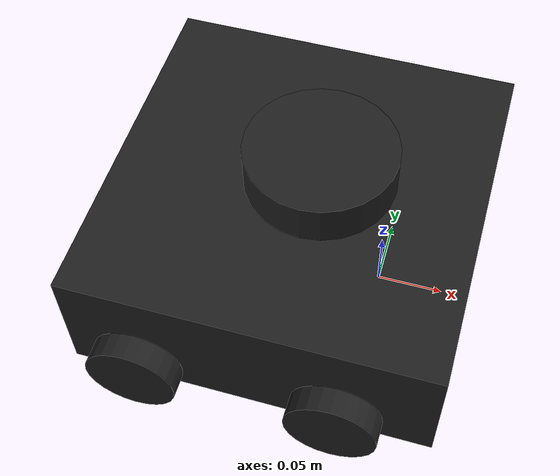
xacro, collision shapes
<?xml version="1.0" ?>
<robot name="turtlebot3_waffle" xmlns:xacro="http://ros.org/wiki/xacro">
  <xacro:include filename="$(find turtlebot3_description)/urdf/common_properties.xacro"/>
  <xacro:include filename="$(find turtlebot3_description)/urdf/turtlebot3_waffle.gazebo.xacro"/>

  <xacro:property name="r200_cam_rgb_px" value="0.005"/>
  <xacro:property name="r200_cam_rgb_py" value="0.018"/>
  <xacro:property name="r200_cam_rgb_pz" value="0.013"/>
  <xacro:property name="r200_cam_depth_offset" value="0.01"/>

  <link name="base_footprint"/>

  <joint name="base_joint" type="fixed">
    <parent link="base_footprint"/>
    <child link="base_link" />
    <origin xyz="0 0 0.010" rpy="0 0 0"/>
  </joint>

  <link name="base_link">
    <visual>
      <origin xyz="-0.064 0 0.0" rpy="0 0 0"/>
      <geometry>
        <mesh filename="package://turtlebot3_description/meshes/bases/waffle_base.stl" scale="0.001 0.001 0.001"/>
      </geometry>
      <material name="light_black"/>
    </visual>

    <collision>
      <origin xyz="-0.064 0 0.047" rpy="0 0 0"/>
      <geometry>
        <box size="0.266 0.266 0.094"/>
      </geometry>
    </collision>

    <inertial>
      <origin xyz="0 0 0" rpy="0 0 0"/>
      <mass value="1.3729096e+00"/>
      <inertia ixx="8.7002718e-03" ixy="-4.7576583e-05" ixz="1.1160499e-04"
               iyy="8.6195418e-03" iyz="-3.5422299e-06"
               izz="1.4612727e-02" />
    </inertial>
  </link>

  <joint name="wheel_left_joint" type="continuous">
    <parent link="base_link"/>
    <child link="wheel_left_link"/>
    <origin xyz="0.0 0.144 0.023" rpy="-1.57 0 0"/>
    <axis xyz="0 0 1"/>
  </joint>

  <link name="wheel_left_link">
    <visual>
      <origin xyz="0 0 0" rpy="1.57 0 0"/>
      <geometry>
        <mesh filename="package://turtlebot3_description/meshes/wheels/left_tire.stl" scale="0.001 0.001 0.001"/>
      </geometry>
      <material name="dark"/>
    </visual>

    <collision>
      <origin xyz="0 0 0" rpy="0 0 0"/>
      <geometry>
        <cylinder length="0.018" radius="0.033"/>
      </geometry>
    </collision>

    <inertial>
      <origin xyz="0 0 0" />
      <mass value="2.8498940e-02" />
      <inertia ixx="1.1175580e-05" ixy="-4.2369783e-11" ixz="-5.9381719e-09"
               iyy="1.1192413e-05" iyz="-1.4400107e-11"
               izz="2.0712558e-05" />
      </inertial>
  </link>

  <joint name="wheel_right_joint" type="continuous">
    <parent link="base_link"/>
    <child link="wheel_right_link"/>
    <origin xyz="0.0 -0.144 0.023" rpy="-1.57 0 0"/>
    <axis xyz="0 0 1"/>
  </joint>

  <link name="wheel_right_link">
    <visual>
      <origin xyz="0 0 0" rpy="1.57 0 0"/>
      <geometry>
        <mesh filename="package://turtlebot3_description/meshes/wheels/right_tire.stl" scale="0.001 0.001 0.001"/>
      </geometry>
      <material name="dark"/>
    </visual>

    <collision>
      <origin xyz="0 0 0" rpy="0 0 0"/>
      <geometry>
        <cylinder length="0.018" radius="0.033"/>
      </geometry>
    </collision>

    <inertial>
      <origin xyz="0 0 0" />
      <mass value="2.8498940e-02" />
      <inertia ixx="1.1175580e-05" ixy="-4.2369783e-11" ixz="-5.9381719e-09"
               iyy="1.1192413e-05" iyz="-1.4400107e-11"
               izz="2.0712558e-05" />
      </inertial>
  </link>

  <joint name="wheel_left_rear_joint" type="continuous">
    <parent link="base_link"/>
    <child link="wheel_left_rear_link"/>
    <origin xyz="-0.144 0.144 0.023" rpy="-1.57 0 0"/>
    <axis xyz="0 0 1"/>
  </joint>

  <link name="wheel_left_rear_link">
    <visual>
      <origin xyz="0 0 0" rpy="1.57 0 0"/>
      <geometry>
        <mesh filename="package://turtlebot3_description/meshes/wheels/left_tire.stl" scale="0.001 0.001 0.001"/>
      </geometry>
      <material name="dark"/>
    </visual>

    <collision>
      <origin xyz="0 0 0" rpy="0 0 0"/>
      <geometry>
        <cylinder length="0.018" radius="0.033"/>
      </geometry>
    </collision>

    <inertial>
      <origin xyz="0 0 0" />
      <mass value="2.8498940e-02" />
      <inertia ixx="1.1175580e-05" ixy="-4.2369783e-11" ixz="-5.9381719e-09"
               iyy="1.1192413e-05" iyz="-1.4400107e-11"
               izz="2.0712558e-05" />
      </inertial>
  </link>

  <joint name="wheel_right_rear_joint" type="continuous">
    <parent link="base_link"/>
    <child link="wheel_right_rear_link"/>
    <origin xyz="-0.144 -0.144 0.023" rpy="-1.57 0 0"/>
    <axis xyz="0 0 1"/>
  </joint>

  <link name="wheel_right_rear_link">
    <visual>
      <origin xyz="0 0 0" rpy="1.57 0 0"/>
      <geometry>
        <mesh filename="package://turtlebot3_description/meshes/wheels/right_tire.stl" scale="0.001 0.001 0.001"/>
      </geometry>
      <material name="dark"/>
    </visual>

    <collision>
      <origin xyz="0 0 0" rpy="0 0 0"/>
      <geometry>
        <cylinder length="0.018" radius="0.033"/>
      </geometry>
    </collision>

    <inertial>
      <origin xyz="0 0 0" />
      <mass value="2.8498940e-02" />
      <inertia ixx="1.1175580e-05" ixy="-4.2369783e-11" ixz="-5.9381719e-09"
               iyy="1.1192413e-05" iyz="-1.4400107e-11"
               izz="2.0712558e-05" />
      </inertial>
  </link>

  <joint name="imu_joint" type="fixed">
    <parent link="base_link"/>
    <child link="imu_link"/>
    <origin xyz="0.0 0 0.068" rpy="0 0 0"/>
  </joint>

  <link name="imu_link"/>

  <joint name="scan_joint" type="fixed">
    <parent link="base_link"/>
    <child link="base_scan"/>
    <origin xyz="-0.064 0 0.122" rpy="0 0 0"/>
  </joint>

  <link name="base_scan">
    <visual>
      <origin xyz="0 0 0" rpy="0 0 0"/>
      <geometry>
        <mesh filename="package://turtlebot3_description/meshes/sensors/lds.stl" scale="0.001 0.001 0.001"/>
      </geometry>
      <material name="dark"/>
    </visual>

    <collision>
      <origin xyz="0.015 0 -0.0065" rpy="0 0 0"/>
      <geometry>
        <cylinder length="0.0315" radius="0.055"/>
      </geometry>
    </collision>

    <inertial>
      <mass value="0.114" />
      <origin xyz="0 0 0" />
      <inertia ixx="0.001" ixy="0.0" ixz="0.0"
               iyy="0.001" iyz="0.0"
               izz="0.001" />
    </inertial>
  </link>

</robot>
